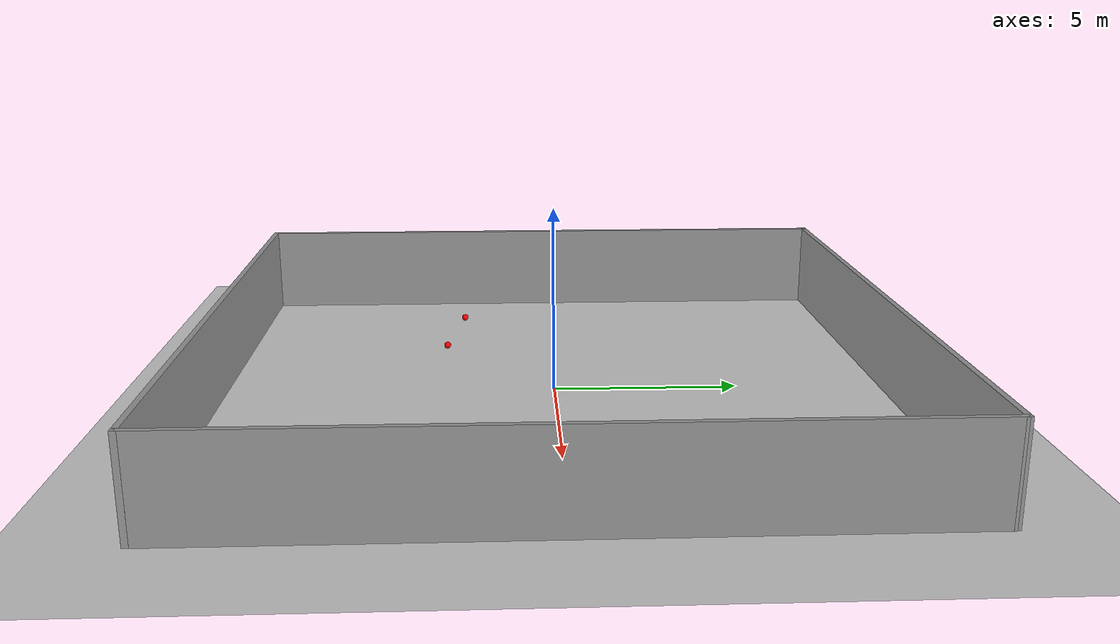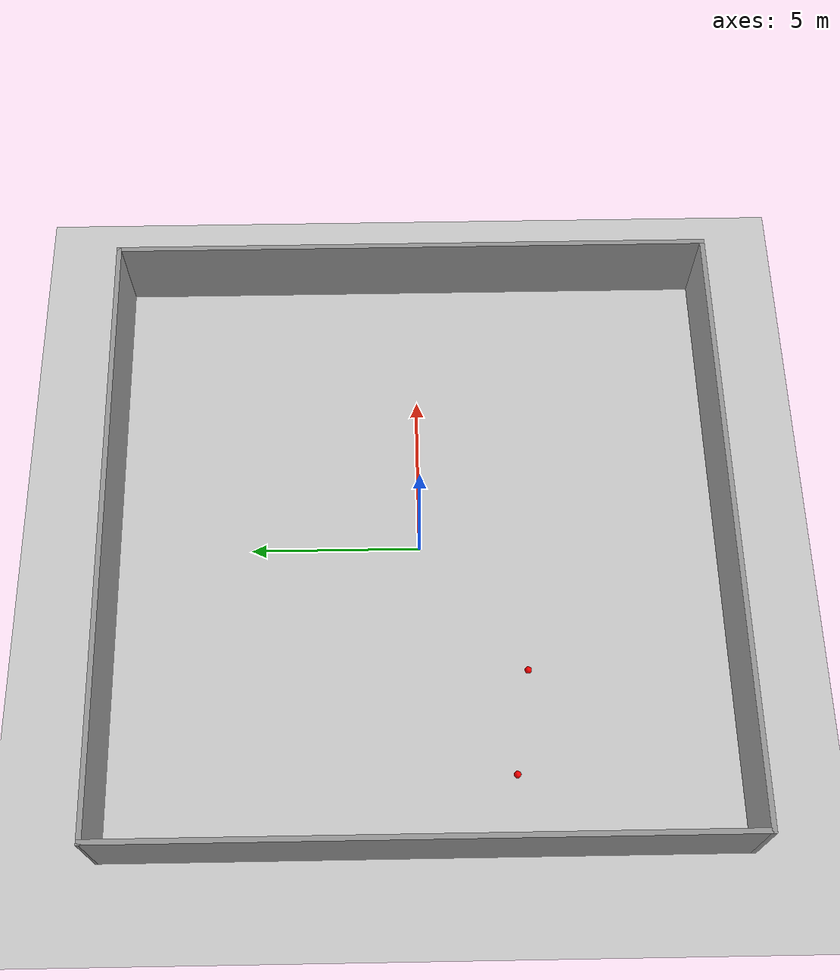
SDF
<sdf version="1.6">
 <world name="default">
  <model name="ground_plane">
   <static>1</static>
   <link name="link">
    <collision name="collision">
     <geometry><plane><normal>0 0 1</normal><size>100 100</size></plane></geometry>
     <surface>
      <contact><collide_bitmask>65535</collide_bitmask></contact>
      <friction><ode><mu>100</mu><mu2>50</mu2></ode></friction>
     </surface>
    </collision>
    <visual name="visual">
     <cast_shadows>0</cast_shadows>
     <geometry><plane><normal>0 0 1</normal><size>100 100</size></plane></geometry>
     <material>
      <script><uri>file://media/materials/scripts/gazebo.material</uri><name>Gazebo/Grey</name></script>
     </material>
    </visual>
   </link>
  </model>
  <model name="wallsfinal">
   <pose>0.061481 0.106628 0 0 -0 0</pose>
   <link name="Wall_10">
    <collision name="Wall_10_Collision">
     <geometry><box><size>18 0.15 2.5</size></box></geometry>
     <pose>0 0 1.25 0 -0 0</pose>
    </collision>
    <visual name="Wall_10_Visual">
     <pose>0 0 1.25 0 -0 0</pose>
     <geometry><box><size>18 0.15 2.5</size></box></geometry>
     <material>
      <script><uri>file://media/materials/scripts/gazebo.material</uri><name>Gazebo/Grey</name></script>
      <ambient>1 1 1 1</ambient>
     </material>
     <meta><layer>0</layer></meta>
    </visual>
    <pose>-9.175 -0.125507 0 0 -0 1.5708</pose>
   </link>
   <link name="Wall_11">
    <collision name="Wall_11_Collision">
     <geometry><box><size>18.5017 0.15 2.5</size></box></geometry>
     <pose>0 0 1.25 0 -0 0</pose>
    </collision>
    <visual name="Wall_11_Visual">
     <pose>0 0 1.25 0 -0 0</pose>
     <geometry><box><size>18.5017 0.15 2.5</size></box></geometry>
     <material>
      <script><uri>file://media/materials/scripts/gazebo.material</uri><name>Gazebo/Grey</name></script>
      <ambient>1 1 1 1</ambient>
     </material>
     <meta><layer>0</layer></meta>
    </visual>
    <pose>0 8.92449 0 0 -0 0.013623</pose>
   </link>
   <link name="Wall_8">
    <collision name="Wall_8_Collision">
     <geometry><box><size>18.25 0.15 2.5</size></box></geometry>
     <pose>0 0 1.25 0 -0 0</pose>
    </collision>
    <visual name="Wall_8_Visual">
     <pose>0 0 1.25 0 -0 0</pose>
     <geometry><box><size>18.25 0.15 2.5</size></box></geometry>
     <material>
      <script><uri>file://media/materials/scripts/gazebo.material</uri><name>Gazebo/Grey</name></script>
      <ambient>1 1 1 1</ambient>
     </material>
     <meta><layer>0</layer></meta>
    </visual>
    <pose>9.175 -0.000507 0 0 -0 -1.5708</pose>
   </link>
   <link name="Wall_9">
    <collision name="Wall_9_Collision">
     <geometry><box><size>18.5 0.15 2.5</size></box></geometry>
     <pose>0 0 1.25 0 -0 0</pose>
    </collision>
    <visual name="Wall_9_Visual">
     <pose>0 0 1.25 0 -0 0</pose>
     <geometry><box><size>18.5 0.15 2.5</size></box></geometry>
     <material>
      <script><uri>file://media/materials/scripts/gazebo.material</uri><name>Gazebo/Grey</name></script>
      <ambient>1 1 1 1</ambient>
     </material>
     <meta><layer>0</layer></meta>
    </visual>
    <pose>0 -9.05051 0 0 -0 3.14159</pose>
   </link>
   <static>1</static>
  </model>
  <model name="sphere_clone_13">
   <link name="link_0">
    <inertial>
     <mass>0.5</mass>
     <inertia><ixx>0.05</ixx><ixy>0</ixy><ixz>0</ixz><iyy>0.05</iyy><iyz>0</iyz><izz>0.05</izz></inertia>
    </inertial>
    <pose>-2e-06 -1e-06 0 0 -0 0</pose>
    <visual name="visual">
     <geometry><sphere><radius>0.1</radius></sphere></geometry>
     <material>
      <lighting>1</lighting>
      <script><uri>file://media/materials/scripts/gazebo.material</uri><name>Gazebo/Grey</name></script>
      <shader type="pixel"><normal_map>__default__</normal_map></shader>
      <ambient>1 0 0 1</ambient>
      <diffuse>1 0 0 1</diffuse>
      <specular>1 0 0 1</specular>
      <emissive>1 0 0 1</emissive>
     </material>
    </visual>
    <collision name="collision">
     <geometry><sphere><radius>0.1</radius></sphere></geometry>
     <surface>
      <friction>
       <ode><mu>1</mu><mu2>1</mu2><fdir1>0 0 0</fdir1><slip1>0</slip1><slip2>0</slip2></ode>
       <torsional>
        <coefficient>1</coefficient>
        <patch_radius>0</patch_radius>
        <surface_radius>0</surface_radius>
        <use_patch_radius>1</use_patch_radius>
        <ode><slip>0</slip></ode>
       </torsional>
      </friction>
      <bounce><restitution_coefficient>0</restitution_coefficient><threshold>1e+06</threshold></bounce>
      <contact>
       <collide_without_contact>0</collide_without_contact>
       <collide_without_contact_bitmask>1</collide_without_contact_bitmask>
       <collide_bitmask>1</collide_bitmask>
       <ode>
        <soft_cfm>0</soft_cfm>
        <soft_erp>0.2</soft_erp>
        <kp>1e+13</kp>
        <kd>1</kd>
        <max_vel>0.01</max_vel>
        <min_depth>0</min_depth>
       </ode>
       <bullet>
        <split_impulse>1</split_impulse>
        <split_impulse_penetration_threshold>-0.01</split_impulse_penetration_threshold>
        <soft_cfm>0</soft_cfm>
        <soft_erp>0.2</soft_erp>
        <kp>1e+13</kp>
        <kd>1</kd>
       </bullet>
      </contact>
     </surface>
    </collision>
   </link>
   <static>0</static>
   <pose>-3.88137 -3.0604 0.1 0 -0 0</pose>
  </model>
  <model name="sphere_clone_20">
   <link name="link_0">
    <inertial>
     <mass>0.5</mass>
     <inertia><ixx>0.05</ixx><ixy>0</ixy><ixz>0</ixz><iyy>0.05</iyy><iyz>0</iyz><izz>0.05</izz></inertia>
    </inertial>
    <pose>-2e-06 -1e-06 0 0 -0 0</pose>
    <visual name="visual">
     <geometry><sphere><radius>0.1</radius></sphere></geometry>
     <material>
      <lighting>1</lighting>
      <script><uri>file://media/materials/scripts/gazebo.material</uri><name>Gazebo/Grey</name></script>
      <shader type="pixel"><normal_map>__default__</normal_map></shader>
      <ambient>1 0 0 1</ambient>
      <diffuse>1 0 0 1</diffuse>
      <specular>1 0 0 1</specular>
      <emissive>1 0 0 1</emissive>
     </material>
    </visual>
    <collision name="collision">
     <geometry><sphere><radius>0.1</radius></sphere></geometry>
     <surface>
      <friction>
       <ode><mu>1</mu><mu2>1</mu2><fdir1>0 0 0</fdir1><slip1>0</slip1><slip2>0</slip2></ode>
       <torsional>
        <coefficient>1</coefficient>
        <patch_radius>0</patch_radius>
        <surface_radius>0</surface_radius>
        <use_patch_radius>1</use_patch_radius>
        <ode><slip>0</slip></ode>
       </torsional>
      </friction>
      <bounce><restitution_coefficient>0</restitution_coefficient><threshold>1e+06</threshold></bounce>
      <contact>
       <collide_without_contact>0</collide_without_contact>
       <collide_without_contact_bitmask>1</collide_without_contact_bitmask>
       <collide_bitmask>1</collide_bitmask>
       <ode>
        <soft_cfm>0</soft_cfm>
        <soft_erp>0.2</soft_erp>
        <kp>1e+13</kp>
        <kd>1</kd>
        <max_vel>0.01</max_vel>
        <min_depth>0</min_depth>
       </ode>
       <bullet>
        <split_impulse>1</split_impulse>
        <split_impulse_penetration_threshold>-0.01</split_impulse_penetration_threshold>
        <soft_cfm>0</soft_cfm>
        <soft_erp>0.2</soft_erp>
        <kp>1e+13</kp>
        <kd>1</kd>
       </bullet>
      </contact>
     </surface>
    </collision>
   </link>
   <static>0</static>
   <pose>-6.93176 -2.61113 0.1 0 -0 0</pose>
  </model>
 </world>
</sdf>
